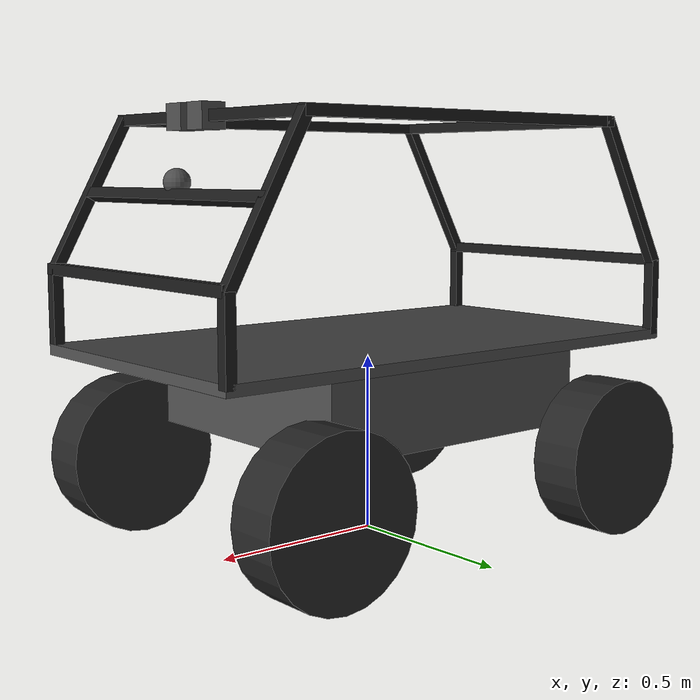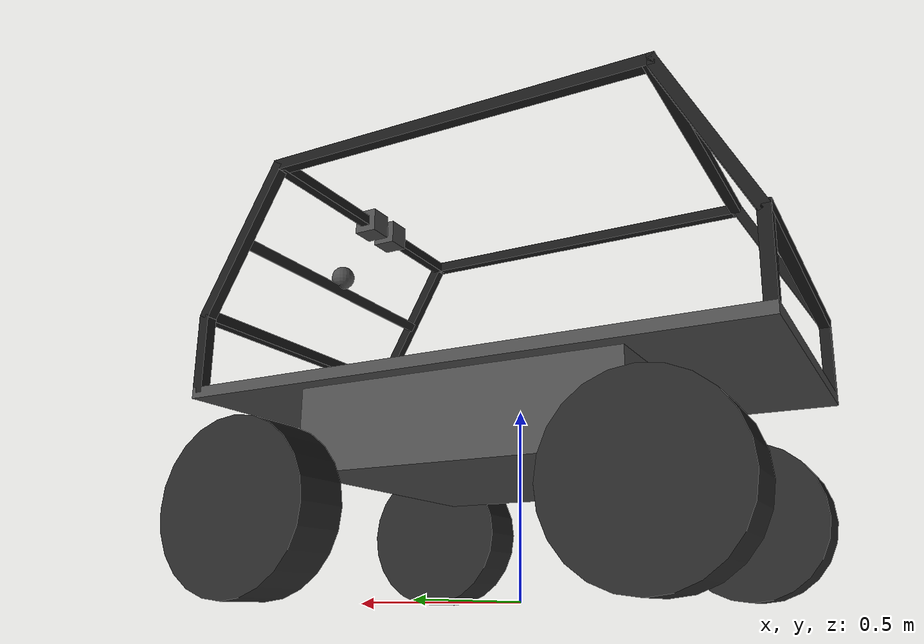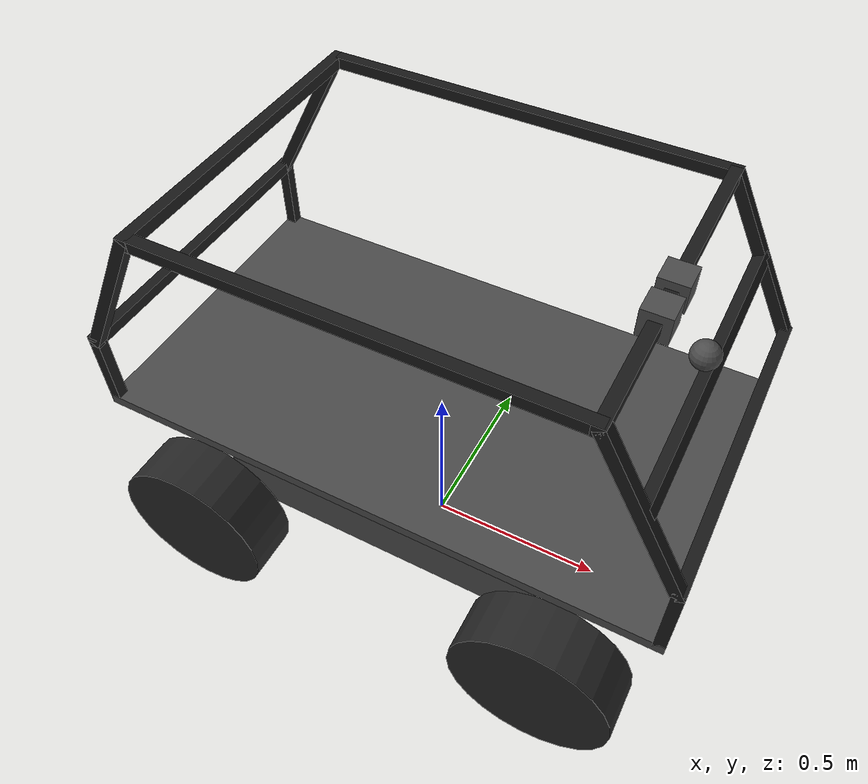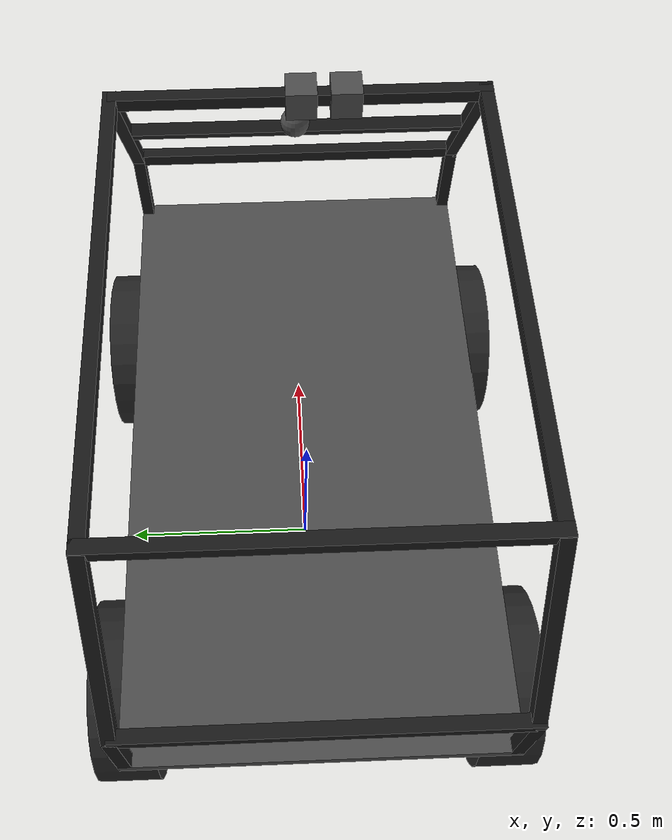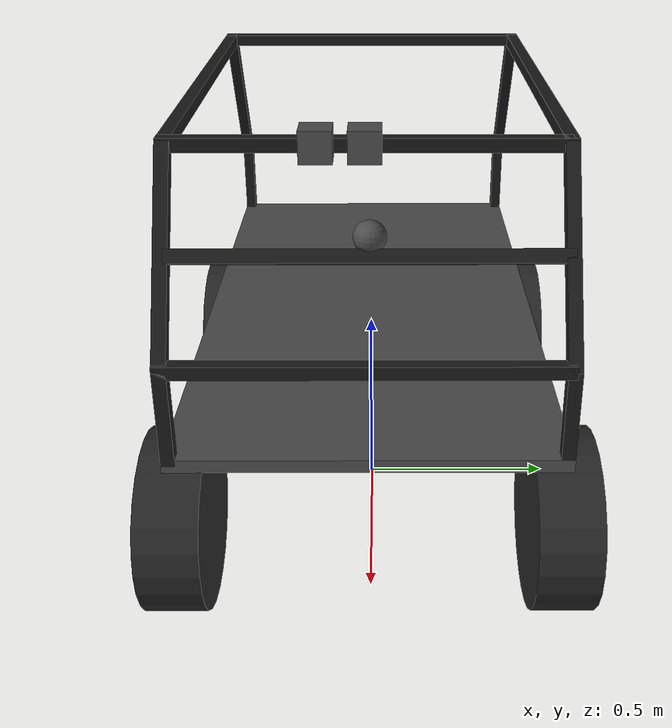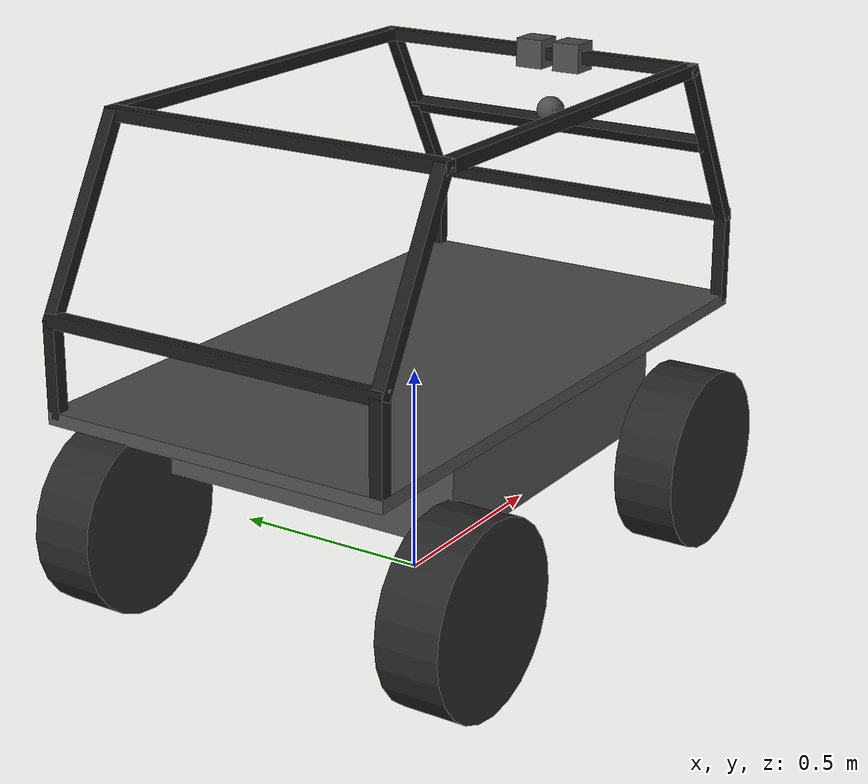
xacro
<?xml version="1.0" ?>
<robot name="robotcar" xmlns:xacro="http://www.ros.org/wiki/xacro">

    <xacro:macro name="sphere_inertial_matrix" params="m r">
        <inertial>
            <mass value="${m}" />
            <inertia ixx="${2*m*r*r/5}" ixy="0" ixz="0"
                iyy="${2*m*r*r/5}" iyz="0"
                izz="${2*m*r*r/5}" />
        </inertial>
    </xacro:macro>

    <xacro:macro name="cylinder_inertial_matrix" params="m r h">
        <inertial>
            <mass value="${m}" />
            <inertia ixx="${m*(3*r*r+h*h)/12}" ixy = "0" ixz = "0"
                iyy="${m*(3*r*r+h*h)/12}" iyz = "0"
                izz="${m*r*r/2}" />
        </inertial>
    </xacro:macro>

    <xacro:macro name="box_inertial_matrix" params="m w h d">
        <inertial>
            <mass value="${m}" />
            <inertia ixx="${m*(h*h+d*d)/12}" ixy = "0" ixz = "0"
                iyy="${m*(w*w+d*d)/12}" iyz = "0"
                izz="${m*(w*w+h*h)/12}" />
        </inertial>
    </xacro:macro>

    <link name="base_link">
        <box_inertial_matrix  m="0.1" w="0.76" h="0.22" d="0.87" />
        <visual>
            <origin xyz="0 0 0.42" rpy="0 0 0" />
            <geometry>
                <box size="0.87 0.76 0.22"/>
            </geometry>
            <material name="grey">
                <color rgba="0.3 0.3 0.3 1"/>
            </material>
        </visual>
        <collision>
            <origin xyz="0 0 0.42" rpy="0 0 0" />
            <geometry>
                <box size="0.87 0.76 0.22"/>
            </geometry>
        </collision>
    </link>

    <gazebo reference="base_link">
        <material>Gazebo/Black</material>
    </gazebo>

    <joint name="base_leftfront_motor_joint" type="continuous">
        <origin xyz="0.51 0.455 0.22" rpy="0 0 0" />
        <parent link="base_link"/>
        <child link="leftfront_motor" />
        <axis xyz="0 1 0"/>
    </joint>

    <transmission name="leftfront_motor_joint_trans">
        <type>transmission_interface/SimpleTransmission</type>
        <joint name="base_leftfront_motor_joint"/>
        <actuator name="leftfront_motor_joint_motor">
        <hardwareInterface>VelocityJointInterface</hardwareInterface>
        <mechanicalReduction>1</mechanicalReduction>
        </actuator>
    </transmission>

    <link name="leftfront_motor">
        <cylinder_inertial_matrix  m="2" r="0.22" h="0.15" />
        <visual>
            <origin xyz="0 0 0" rpy="1.5707 0 0" />
            <geometry>
                <cylinder radius="0.22" length = "0.15"/>
            </geometry>
            <material name="darkgrey">
                <color rgba="0.15 0.15 0.15 1"/>
            </material>
        </visual>
        <collision>
            <origin xyz="0 0 0" rpy="1.5707 0 0" />
            <geometry>
                <cylinder radius="0.22" length = "0.15"/>
            </geometry>
        </collision>
    </link>

    <gazebo reference="leftfront_motor">
        <material>Gazebo/Black</material>
    </gazebo>

    <joint name="base_leftback_motor_joint" type="continuous">
        <origin xyz="-0.51 0.455 0.22" rpy="0 0 0" />
        <parent link="base_link"/>
        <child link="leftback_motor" />
        <axis xyz="0 1 0"/>
    </joint>

    <link name="leftback_motor">
        <cylinder_inertial_matrix  m="0.2" r="0.22" h="0.15" />
        <visual>
            <origin xyz="0 0 0" rpy="1.5707 0 0" />
            <geometry>
                <cylinder radius="0.22" length = "0.15"/>
            </geometry>
            <material name="darkgrey">
                <color rgba="0.15 0.15 0.15 1"/>
            </material>
        </visual>
        <collision>
            <origin xyz="0 0 0" rpy="1.5707 0 0" />
            <geometry>
                <cylinder radius="0.22" length = "0.15"/>
            </geometry>
        </collision>
    </link>

    <gazebo reference="leftback_motor">
        <material>Gazebo/Black</material>
    </gazebo>

    <joint name="base_rightfront_motor_joint" type="continuous">
        <origin xyz="0.51 -0.455 0.22" rpy="0 0 0" />
        <parent link="base_link"/>
        <child link="rightfront_motor" />
        <axis xyz="0 1 0"/>
    </joint>

    <transmission name="rightfront_motor_joint_trans">
        <type>transmission_interface/SimpleTransmission</type>
        <joint name="base_rightfront_motor_joint"/>
        <actuator name="rightfront_motor_joint_motor">
        <hardwareInterface>VelocityJointInterface</hardwareInterface>
        <mechanicalReduction>1</mechanicalReduction>
        </actuator>
    </transmission>

    <link name="rightfront_motor">
        <cylinder_inertial_matrix  m="2" r="0.22" h="0.15" />
        <visual>
            <origin xyz="0 0 0" rpy="1.5707 0 0" />
            <geometry>
                <cylinder radius="0.22" length = "0.15"/>
            </geometry>
            <material name="darkgrey">
                <color rgba="0.15 0.15 0.15 1"/>
            </material>
        </visual>
        <collision>
            <origin xyz="0 0 0" rpy="1.5707 0 0" />
            <geometry>
                <cylinder radius="0.22" length = "0.15"/>
            </geometry>
        </collision>
    </link>

    <gazebo reference="rightfront_motor">
        <material>Gazebo/Black</material>
    </gazebo>

    <joint name="base_rightback_motor_joint" type="continuous">
        <origin xyz="-0.51 -0.455 0.22" rpy="0 0 0" />
        <parent link="base_link"/>
        <child link="rightback_motor" />
        <axis xyz="0 1 0"/>
    </joint>

    <link name="rightback_motor">
        <cylinder_inertial_matrix  m="0.2" r="0.22" h="0.15" />
        <visual>
            <origin xyz="0 0 0" rpy="1.5707 0 0" />
            <geometry>
                <cylinder radius="0.22" length = "0.15"/>
            </geometry>
            <material name="darkgrey">
                <color rgba="0.15 0.15 0.15 1"/>
            </material>
        </visual>
        <collision>
            <origin xyz="0 0 0" rpy="1.5707 0 0" />
            <geometry>
                <cylinder radius="0.22" length = "0.15"/>
            </geometry>
        </collision>
    </link>

    <gazebo reference="rightback_motor">
        <material>Gazebo/Black</material>
    </gazebo>

    <joint name="base_board" type="fixed">
        <origin xyz="0 0 0.545" rpy="0 0 0" />
        <parent link="base_link"/>
        <child link="board" />
    </joint>

    <link name="board">
        <visual>
            <origin xyz="0 0 0" rpy="0 0 0" />
            <geometry>
                <box size="1.54 0.86 0.03"/>
            </geometry>
            <material name="grey">
                <color rgba="0.3 0.3 0.3 1"/>
            </material>
        </visual>
        <collision>
            <origin xyz="0 0 0" rpy="0 0 0" />
            <geometry>
                <box size="1.54 0.86 0.03"/>
            </geometry>
        </collision>
    </link>

    <gazebo reference="board">
        <material>Gazebo/Blue</material>
    </gazebo>

    <joint name="board_bar_leftfront" type="fixed">
        <origin xyz="0.755 0.415 0.11" rpy="0 0 0" />
        <parent link="board"/>
        <child link="bar_leftfront" />
    </joint>

    <link name="bar_leftfront">
        <visual>
            <origin xyz="0 0 0" rpy="0 0 0" />
            <geometry>
                <box size="0.03 0.03 0.22"/>
            </geometry>
            <material name="darkgrey">
                <color rgba="0.1 0.1 0.1 1"/>
            </material>
        </visual>
        <collision>
            <origin xyz="0 0 0" rpy="0 0 0" />
            <geometry>
                <box size="0.03 0.03 0.22"/>
            </geometry>
        </collision>
    </link>

    <gazebo reference="bar_leftfront">
        <material>
            <color rgba="0.1 0.1 0.1 1"/>
        </material>
    </gazebo>

    <joint name="board_bar_leftback" type="fixed">
        <origin xyz="-0.755 0.415 0.11" rpy="0 0 0" />
        <parent link="board"/>
        <child link="bar_leftback" />
    </joint>

    <link name="bar_leftback">
        <visual>
            <origin xyz="0 0 0" rpy="0 0 0" />
            <geometry>
                <box size="0.03 0.03 0.22"/>
            </geometry>
            <material name="darkgrey">
                <color rgba="0.1 0.1 0.1 1"/>
            </material>
        </visual>
        <collision>
            <origin xyz="0 0 0" rpy="0 0 0" />
            <geometry>
                <box size="0.03 0.03 0.22"/>
            </geometry>
        </collision>
    </link>

    <gazebo reference="bar_leftback">
        <material>
            <color rgba="0.1 0.1 0.1 1"/>
        </material>
    </gazebo>

    <joint name="board_bar_rightfront" type="fixed">
        <origin xyz="0.755 -0.415 0.11" rpy="0 0 0" />
        <parent link="board"/>
        <child link="bar_rightfront" />
    </joint>

    <link name="bar_rightfront">
        <visual>
            <origin xyz="0 0 0" rpy="0 0 0" />
            <geometry>
                <box size="0.03 0.03 0.22"/>
            </geometry>
            <material name="darkgrey">
                <color rgba="0.1 0.1 0.1 1"/>
            </material>
        </visual>
        <collision>
            <origin xyz="0 0 0" rpy="0 0 0" />
            <geometry>
                <box size="0.03 0.03 0.22"/>
            </geometry>
        </collision>
    </link>

    <gazebo reference="bar_rightfront">
        <material>
            <color rgba="0.1 0.1 0.1 1"/>
        </material>
    </gazebo>

    <joint name="board_bar_rightback" type="fixed">
        <origin xyz="-0.755 -0.415 0.11" rpy="0 0 0" />
        <parent link="board"/>
        <child link="bar_rightback" />
    </joint>

    <link name="bar_rightback">
        <visual>
            <origin xyz="0 0 0" rpy="0 0 0" />
            <geometry>
                <box size="0.03 0.03 0.22"/>
            </geometry>
            <material name="darkgrey">
                <color rgba="0.1 0.1 0.1 1"/>
            </material>
        </visual>
        <collision>
            <origin xyz="0 0 0" rpy="0 0 0" />
            <geometry>
                <box size="0.03 0.03 0.22"/>
            </geometry>
        </collision>
    </link>

    <gazebo reference="bar_rightback">
        <material>
            <color rgba="0.1 0.1 0.1 1"/>
        </material>
    </gazebo>

    <joint name="bar_leftfront_bar_leftfront_tilt" type="fixed">
        <origin xyz="-0.111 0 0.309" rpy="0 -0.5 0" />
        <parent link="bar_leftfront"/>
        <child link="bar_leftfront_tilt" />
    </joint>

    <link name="bar_leftfront_tilt">
        <visual>
            <origin xyz="0 0 0" rpy="0 0 0" />
            <geometry>
                <box size="0.03 0.03 0.47"/>
            </geometry>
            <material name="darkgrey">
                <color rgba="0.1 0.1 0.1 1"/>
            </material>
        </visual>
        <collision>
            <origin xyz="0 0 0" rpy="0 0 0" />
            <geometry>
                <box size="0.03 0.03 0.47"/>
            </geometry>
        </collision>
    </link>

    <gazebo reference="bar_leftfront_tilt">
        <material>
            <color rgba="0.1 0.1 0.1 1"/>
        </material>
    </gazebo>

    <joint name="bar_leftfront_tilt_camerabar" type="fixed">
        <origin xyz="0 -0.41 0" rpy="0 0 0" />
        <parent link="bar_leftfront_tilt"/>
        <child link="camerabar" />
    </joint>

    <link name="camerabar">
        <visual>
            <origin xyz="0 0 0" rpy="0 0 0" />
            <geometry>
                <box size="0.03 0.83 0.03"/>
            </geometry>
            <material name="darkgrey">
                <color rgba="0.1 0.1 0.1 1"/>
            </material>
        </visual>
        <collision>
            <origin xyz="0 0 0" rpy="0 0 0" />
            <geometry>
                <box size="0.03 0.03 0.47"/>
            </geometry>
        </collision>
    </link>

    <joint name="bar_front_high_left_camera" type="fixed">
        <origin xyz="0 0 0" rpy="-1.5708 0 0" />
        <parent link="bar_front_high"/>
        <child link="left_camera" />
    </joint>

    <link name="left_camera">
        <visual>
            <origin xyz="0 0 0" rpy="0 0 0" />
            <geometry>
                <box size="0.07 0.07 0.07"/>
            </geometry>
            <material name="grey">
                <color rgba="0.3 0.3 0.3 1"/>
            </material>
        </visual>
        <collision>
            <origin xyz="0 0 0" rpy="0 0 0" />
            <geometry>
                <box size="0.03 0.03 0.47"/>
            </geometry>
        </collision>
    </link>

    <gazebo reference="left_camera">
        <material>Gazebo/Black</material>
    </gazebo>

    <joint name="bar_front_high_right_camera" type="fixed">
        <origin xyz="0 0 0.1" rpy="-1.5708 0 0" />
        <parent link="bar_front_high"/>
        <child link="right_camera" />
    </joint>

    <link name="right_camera">
        <visual>
            <origin xyz="0 0 0" rpy="0 0 0" />
            <geometry>
                <box size="0.07 0.07 0.07"/>
            </geometry>
            <material name="grey">
                <color rgba="0.3 0.3 0.3 1"/>
            </material>
        </visual>
        <collision>
            <origin xyz="0 0 0" rpy="0 0 0" />
            <geometry>
                <box size="0.03 0.03 0.47"/>
            </geometry>
        </collision>
    </link>

    <gazebo reference="right_camera">
        <material>Gazebo/Black</material>
    </gazebo>

    <joint name="bar_leftback_bar_leftback_tilt" type="fixed">
        <origin xyz="0.111 0 0.309" rpy="0 0.5 0" />
        <parent link="bar_leftback"/>
        <child link="bar_leftback_tilt" />
    </joint>

    <link name="bar_leftback_tilt">
        <visual>
            <origin xyz="0 0 0" rpy="0 0 0" />
            <geometry>
                <box size="0.03 0.03 0.47"/>
            </geometry>
            <material name="darkgrey">
                <color rgba="0.1 0.1 0.1 1"/>
            </material>
        </visual>
        <collision>
            <origin xyz="0 0 0" rpy="0 0 0" />
            <geometry>
                <box size="0.03 0.03 0.47"/>
            </geometry>
        </collision>
    </link>

    <gazebo reference="bar_leftback_tilt">
        <material>
            <color rgba="0.1 0.1 0.1 1"/>
        </material>
    </gazebo>

    <joint name="bar_rightfront_bar_rightfront_tilt" type="fixed">
        <origin xyz="-0.111 0 0.309" rpy="0 -0.5 0" />
        <parent link="bar_rightfront"/>
        <child link="bar_rightfront_tilt" />
    </joint>

    <link name="bar_rightfront_tilt">
        <visual>
            <origin xyz="0 0 0" rpy="0 0 0" />
            <geometry>
                <box size="0.03 0.03 0.47"/>
            </geometry>
            <material name="darkgrey">
                <color rgba="0.1 0.1 0.1 1"/>
            </material>
        </visual>
        <collision>
            <origin xyz="0 0 0" rpy="0 0 0" />
            <geometry>
                <box size="0.03 0.03 0.47"/>
            </geometry>
        </collision>
    </link>

    <gazebo reference="bar_rightfront_tilt">
        <material>
            <color rgba="0.1 0.1 0.1 1"/>
        </material>
    </gazebo>

    <joint name="bar_rightback_bar_rightback_tilt" type="fixed">
        <origin xyz="0.111 0 0.309" rpy="0 0.5 0" />
        <parent link="bar_rightback"/>
        <child link="bar_rightback_tilt" />
    </joint>

    <link name="bar_rightback_tilt">
        <visual>
            <origin xyz="0 0 0" rpy="0 0 0" />
            <geometry>
                <box size="0.03 0.03 0.47"/>
            </geometry>
            <material name="darkgrey">
                <color rgba="0.1 0.1 0.1 1"/>
            </material>
        </visual>
        <collision>
            <origin xyz="0 0 0" rpy="0 0 0" />
            <geometry>
                <box size="0.03 0.03 0.47"/>
            </geometry>
            <material name="darkgrey">
                <color rgba="0.1 0.1 0.1 1"/>
            </material>
        </collision>
    </link>

    <gazebo reference="bar_rightback_tilt">
        <material>
            <color rgba="0.1 0.1 0.1 1"/>
        </material>
    </gazebo>

    <joint name="bar_leftfront_bar_front" type="fixed">
        <origin xyz="0 -0.42 0.11" rpy="1.5708 0 0" />
        <parent link="bar_leftfront"/>
        <child link="bar_front" />
    </joint>

    <link name="bar_front">
        <visual>
            <origin xyz="0 0 0" rpy="0 0 0" />
            <geometry>
                <box size="0.03 0.03 0.85"/>
            </geometry>
            <material name="darkgrey">
                <color rgba="0.1 0.1 0.1 1"/>
            </material>
        </visual>
        <collision>
            <origin xyz="0 0 0" rpy="0 0 0" />
            <geometry>
                <box size="0.03 0.03 0.85"/>
            </geometry>
        </collision>
    </link>

    <gazebo reference="bar_front">
        <material>
            <color rgba="0.1 0.1 0.1 1"/>
        </material>
    </gazebo>

    <joint name="camerabar_laser" type="fixed">
        <origin xyz="0 0 0.04" rpy="0 0.5 0" />
        <parent link="camerabar"/>
        <child link="laser" />
    </joint>

    <link name="laser">
        <visual>
            <origin xyz="0 0 0" rpy="0 0 0" />
            <geometry>
                <sphere radius="0.035"/>
            </geometry>
            <material name="grey">
                <color rgba="0.3 0.3 0.3 1"/>
            </material>
        </visual>
        <collision>
            <origin xyz="0 0 0" rpy="0 0 0" />
            <geometry>
                <sphere radius="0.035"/>
            </geometry>
        </collision>
    </link>

    <gazebo reference="laser">
        <material>Gazebo/Black</material>
    </gazebo>

    <joint name="bar_leftfront_bar_front_high" type="fixed">
        <origin xyz="-0.225 -0.42 0.51" rpy="1.5708 0 0" />
        <parent link="bar_leftfront"/>
        <child link="bar_front_high" />
    </joint>

    <link name="bar_front_high">
        <visual>
            <origin xyz="0 0 0" rpy="0 0 0" />
            <geometry>
                <box size="0.03 0.03 0.85"/>
            </geometry>
            <material name="darkgrey">
                <color rgba="0.1 0.1 0.1 1"/>
            </material>
        </visual>
        <collision>
            <origin xyz="0 0 0" rpy="0 0 0" />
            <geometry>
                <box size="0.03 0.03 0.85"/>
            </geometry>
        </collision>
    </link>

    <gazebo reference="bar_front_high">
        <material>
            <color rgba="0.1 0.1 0.1 1"/>
        </material>
    </gazebo>

    <joint name="bar_leftback_bar_back" type="fixed">
        <origin xyz="0 -0.42 0.11" rpy="1.5708 0 0" />
        <parent link="bar_leftback"/>
        <child link="bar_back" />
    </joint>

    <link name="bar_back">
        <visual>
            <origin xyz="0 0 0" rpy="0 0 0" />
            <geometry>
                <box size="0.03 0.03 0.85"/>
            </geometry>
            <material name="darkgrey">
                <color rgba="0.1 0.1 0.1 1"/>
            </material>
        </visual>
        <collision>
            <origin xyz="0 0 0" rpy="0 0 0" />
            <geometry>
                <box size="0.03 0.03 0.85"/>
            </geometry>
        </collision>
    </link>

    <gazebo reference="bar_back">
        <material>
            <color rgba="0.1 0.1 0.1 1"/>
        </material>
    </gazebo>

    <joint name="bar_leftback_bar_back_high" type="fixed">
        <origin xyz="0.225 -0.415 0.51" rpy="1.5708 0 0" />
        <parent link="bar_leftback"/>
        <child link="bar_back_high" />
    </joint>

    <link name="bar_back_high">
        <visual>
            <origin xyz="0 0 0" rpy="0 0 0" />
            <geometry>
                <box size="0.03 0.03 0.86"/>
            </geometry>
            <material name="darkgrey">
                <color rgba="0.1 0.1 0.1 1"/>
            </material>
        </visual>
        <collision>
            <origin xyz="0 0 0" rpy="0 0 0" />
            <geometry>
                <box size="0.03 0.03 0.86"/>
            </geometry>
        </collision>
    </link>

    <gazebo reference="bar_back_high">
        <material>
            <color rgba="0.1 0.1 0.1 1"/>
        </material>
    </gazebo>

    <joint name="bar_front_high_bar_top_left" type="fixed">
        <origin xyz="-0.52 0 0.4095" rpy="0 0 0" />
        <parent link="bar_front_high"/>
        <child link="bar_top_left" />
    </joint>

    <link name="bar_top_left">
        <visual>
            <origin xyz="0 0 0" rpy="0 0 0" />
            <geometry>
                <box size="1.06 0.03 0.03"/>
            </geometry>
            <material name="darkgrey">
                <color rgba="0.1 0.1 0.1 1"/>
            </material>
        </visual>
        <collision>
            <origin xyz="0 0 0" rpy="0 0 0" />
            <geometry>
                <box size="1.06 0.03 0.03"/>
            </geometry>
        </collision>
    </link>

    <gazebo reference="bar_top_left">
        <material>
            <color rgba="0.1 0.1 0.1 1"/>
        </material>
    </gazebo>

    <joint name="bar_front_high_bar_top_right" type="fixed">
        <origin xyz="-0.52 0 -0.42" rpy="0 0 0" />
        <parent link="bar_front_high"/>
        <child link="bar_top_right" />
    </joint>

    <link name="bar_top_right">
        <visual>
            <origin xyz="0 0 0" rpy="0 0 0" />
            <geometry>
                <box size="1.071 0.03 0.03"/>
            </geometry>
            <material name="darkgrey">
                <color rgba="0.1 0.1 0.1 1"/>
            </material>
        </visual>
        <collision>
            <origin xyz="0 0 0" rpy="0 0 0" />
            <geometry>
                <box size="1.071 0.03 0.03"/>
            </geometry>
        </collision>
    </link>

    <gazebo reference="bar_top_right">
        <material>
            <color rgba="0.1 0.1 0.1 1"/>
        </material>
    </gazebo>

    <!-- controller -->
    <gazebo>
        <plugin name="differential_drive_controller" filename="libgazebo_ros_diff_drive.so">
        <rosDebugLevel>Debug</rosDebugLevel>
        <publishWheelTF>true</publishWheelTF>
        <robotNamespace>/</robotNamespace>
        <publishTf>1</publishTf>
        <publishWheelJointState>true</publishWheelJointState>
        <alwaysOn>true</alwaysOn>
        <updateRate>100.0</updateRate>
        <legacyMode>true</legacyMode>
        <leftJoint>base_leftfront_motor_joint</leftJoint>
        <rightJoint>base_rightfront_motor_joint</rightJoint>
        <wheelSeparation>0.91</wheelSeparation>
        <wheelDiameter>0.44</wheelDiameter>
        <broadcastTF>true</broadcastTF>
        <wheelTorque>30</wheelTorque>
        <wheelAcceleration>1.8</wheelAcceleration>
        <commandTopic>cmd_vel</commandTopic>
        <publishOdomTF>false</publishOdomTF>
        <odometryFrame>odom</odometryFrame>
        <odometryTopic>odom</odometryTopic>
        <robotBaseFrame>base_link</robotBaseFrame>
        </plugin>
    </gazebo>

    <gazebo reference="left_camera">
        <sensor type="camera" name="left_camera_node">
            <update_rate>30.0</update_rate>
            <camera name="left_camera">
                <horizontal_fov>0.90711111</horizontal_fov>
                <image>
                    <width>1280</width>
                    <height>720</height>
                    <format>R8G8B8</format>
                </image>
                <clip>
                    <near>0.02</near>
                    <far>300</far>
                </clip>
                <noise>
                    <type>gaussian</type>
                    <mean>0.0</mean>
                    <stddev>0.007</stddev>
                </noise>
            </camera>
            <plugin name="gazebo_camera" filename="libgazebo_ros_camera.so">
                <alwaysOn>true</alwaysOn>
                <updateRate>0.0</updateRate>
                <cameraName>/left_camera</cameraName>
                <imageTopicName>image_raw</imageTopicName>
                <cameraInfoTopicName>left_camera_info</cameraInfoTopicName>
                <frameName>left_camera</frameName>
                <hackBaseline>0.07</hackBaseline>
                <distortionK1>0.0</distortionK1>
                <distortionK2>0.0</distortionK2>
                <distortionK3>0.0</distortionK3>
                <distortionT1>0.0</distortionT1>
                <distortionT2>0.0</distortionT2>
            </plugin>
        </sensor>
    </gazebo>

    <gazebo reference="right_camera">
        <sensor type="camera" name="left_camera_node">
            <update_rate>30.0</update_rate>
            <camera name="right_camera">
                <horizontal_fov>0.90711111</horizontal_fov>
                <image>
                    <width>1280</width>
                    <height>720</height>
                    <format>R8G8B8</format>
                </image>
                <clip>
                    <near>0.02</near>
                    <far>300</far>
                </clip>
                <noise>
                    <type>gaussian</type>
                    <mean>0.0</mean>
                    <stddev>0.007</stddev>
                </noise>
            </camera>
            <plugin name="gazebo_camera" filename="libgazebo_ros_camera.so">
                <alwaysOn>true</alwaysOn>
                <updateRate>0.0</updateRate>
                <cameraName>/right_camera</cameraName>
                <imageTopicName>image_raw</imageTopicName>
                <cameraInfoTopicName>right_camera_info</cameraInfoTopicName>
                <frameName>right_camera</frameName>
                <hackBaseline>0.07</hackBaseline>
                <distortionK1>0.0</distortionK1>
                <distortionK2>0.0</distortionK2>
                <distortionK3>0.0</distortionK3>
                <distortionT1>0.0</distortionT1>
                <distortionT2>0.0</distortionT2>
            </plugin>
        </sensor>
    </gazebo>

    <gazebo reference="laser">
        <sensor type="ray" name="laser">
            <pose>0 0 0 0 0 0</pose>
            <visualize>false</visualize>
            <update_rate>5.5</update_rate>
            <ray>
                <scan>
                  <horizontal>
                    <samples>3000</samples>
                    <resolution>1</resolution>
                    <min_angle>-3.14</min_angle>
                    <max_angle>3.14</max_angle>
                  </horizontal>
                </scan>
                <range>
                  <min>0.10</min>
                  <max>30.0</max>
                  <resolution>1</resolution>
                </range>
                <noise>
                  <type>gaussian</type>
                  <mean>0.0</mean>
                  <stddev>0.01</stddev>
                </noise>
            </ray>
            <plugin name="gazebo_laser" filename="libgazebo_ros_laser.so">
                <topicName>/scan</topicName>
                <frameName>laser</frameName>
            </plugin>
        </sensor>
    </gazebo>

</robot>
